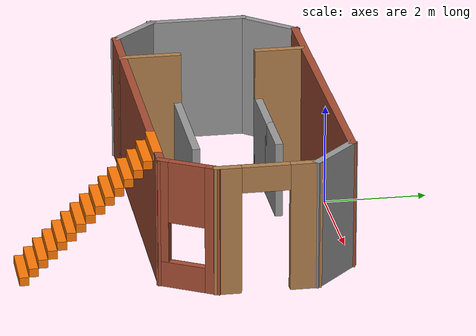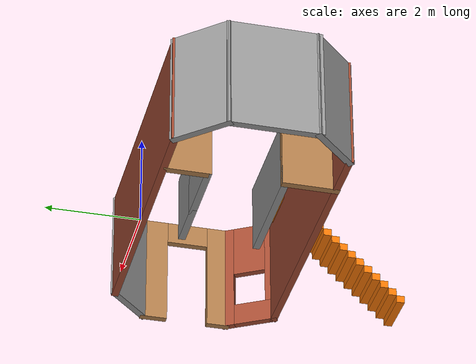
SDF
<?xml version='1.0'?>
<sdf version='1.6'>
  <model name='test_world'>
    <pose frame=''>-0.006075 -3.10197 0 0 -0 0</pose>
    <link name='Stairs_8'>
      <visual name='Stairs_8_Visual_0'>
        <pose frame=''>2.32607 -3.04903 0.083333 0 -0 -3.14159</pose>
        <geometry>
          <box>
            <size>1 0.178 0.166667</size>
          </box>
        </geometry>
        <material>
          <script>
            <uri>file://media/materials/scripts/gazebo.material</uri>
            <name>Gazebo/Grey</name>
          </script>
          <ambient>0.996078 0.47451 0.0196078 1</ambient>
        </material>
      </visual>
      <collision name='Stairs_8_Collision_0'>
        <geometry>
          <box>
            <size>1 0.178 0.166667</size>
          </box>
        </geometry>
        <pose frame=''>2.32607 -3.04903 0.083333 0 -0 -3.14159</pose>
      </collision>
      <visual name='Stairs_8_Visual_1'>
        <pose frame=''>2.32607 -2.87103 0.25 0 -0 -3.14159</pose>
        <geometry>
          <box>
            <size>1 0.178 0.166667</size>
          </box>
        </geometry>
        <material>
          <script>
            <uri>file://media/materials/scripts/gazebo.material</uri>
            <name>Gazebo/Grey</name>
          </script>
          <ambient>0.996078 0.47451 0.0196078 1</ambient>
        </material>
      </visual>
      <collision name='Stairs_8_Collision_1'>
        <geometry>
          <box>
            <size>1 0.178 0.166667</size>
          </box>
        </geometry>
        <pose frame=''>2.32607 -2.87103 0.25 0 -0 -3.14159</pose>
      </collision>
      <visual name='Stairs_8_Visual_2'>
        <pose frame=''>2.32607 -2.69303 0.416667 0 -0 -3.14159</pose>
        <geometry>
          <box>
            <size>1 0.178 0.166667</size>
          </box>
        </geometry>
        <material>
          <script>
            <uri>file://media/materials/scripts/gazebo.material</uri>
            <name>Gazebo/Grey</name>
          </script>
          <ambient>0.996078 0.47451 0.0196078 1</ambient>
        </material>
      </visual>
      <collision name='Stairs_8_Collision_2'>
        <geometry>
          <box>
            <size>1 0.178 0.166667</size>
          </box>
        </geometry>
        <pose frame=''>2.32607 -2.69303 0.416667 0 -0 -3.14159</pose>
      </collision>
      <visual name='Stairs_8_Visual_3'>
        <pose frame=''>2.32607 -2.51503 0.583333 0 -0 -3.14159</pose>
        <geometry>
          <box>
            <size>1 0.178 0.166667</size>
          </box>
        </geometry>
        <material>
          <script>
            <uri>file://media/materials/scripts/gazebo.material</uri>
            <name>Gazebo/Grey</name>
          </script>
          <ambient>0.996078 0.47451 0.0196078 1</ambient>
        </material>
      </visual>
      <collision name='Stairs_8_Collision_3'>
        <geometry>
          <box>
            <size>1 0.178 0.166667</size>
          </box>
        </geometry>
        <pose frame=''>2.32607 -2.51503 0.583333 0 -0 -3.14159</pose>
      </collision>
      <visual name='Stairs_8_Visual_4'>
        <pose frame=''>2.32607 -2.33703 0.75 0 -0 -3.14159</pose>
        <geometry>
          <box>
            <size>1 0.178 0.166667</size>
          </box>
        </geometry>
        <material>
          <script>
            <uri>file://media/materials/scripts/gazebo.material</uri>
            <name>Gazebo/Grey</name>
          </script>
          <ambient>0.996078 0.47451 0.0196078 1</ambient>
        </material>
      </visual>
      <collision name='Stairs_8_Collision_4'>
        <geometry>
          <box>
            <size>1 0.178 0.166667</size>
          </box>
        </geometry>
        <pose frame=''>2.32607 -2.33703 0.75 0 -0 -3.14159</pose>
      </collision>
      <visual name='Stairs_8_Visual_5'>
        <pose frame=''>2.32607 -2.15903 0.916667 0 -0 -3.14159</pose>
        <geometry>
          <box>
            <size>1 0.178 0.166667</size>
          </box>
        </geometry>
        <material>
          <script>
            <uri>file://media/materials/scripts/gazebo.material</uri>
            <name>Gazebo/Grey</name>
          </script>
          <ambient>0.996078 0.47451 0.0196078 1</ambient>
        </material>
      </visual>
      <collision name='Stairs_8_Collision_5'>
        <geometry>
          <box>
            <size>1 0.178 0.166667</size>
          </box>
        </geometry>
        <pose frame=''>2.32607 -2.15903 0.916667 0 -0 -3.14159</pose>
      </collision>
      <visual name='Stairs_8_Visual_6'>
        <pose frame=''>2.32607 -1.98103 1.08333 0 -0 -3.14159</pose>
        <geometry>
          <box>
            <size>1 0.178 0.166667</size>
          </box>
        </geometry>
        <material>
          <script>
            <uri>file://media/materials/scripts/gazebo.material</uri>
            <name>Gazebo/Grey</name>
          </script>
          <ambient>0.996078 0.47451 0.0196078 1</ambient>
        </material>
      </visual>
      <collision name='Stairs_8_Collision_6'>
        <geometry>
          <box>
            <size>1 0.178 0.166667</size>
          </box>
        </geometry>
        <pose frame=''>2.32607 -1.98103 1.08333 0 -0 -3.14159</pose>
      </collision>
      <visual name='Stairs_8_Visual_7'>
        <pose frame=''>2.32607 -1.80303 1.25 0 -0 -3.14159</pose>
        <geometry>
          <box>
            <size>1 0.178 0.166667</size>
          </box>
        </geometry>
        <material>
          <script>
            <uri>file://media/materials/scripts/gazebo.material</uri>
            <name>Gazebo/Grey</name>
          </script>
          <ambient>0.996078 0.47451 0.0196078 1</ambient>
        </material>
      </visual>
      <collision name='Stairs_8_Collision_7'>
        <geometry>
          <box>
            <size>1 0.178 0.166667</size>
          </box>
        </geometry>
        <pose frame=''>2.32607 -1.80303 1.25 0 -0 -3.14159</pose>
      </collision>
      <visual name='Stairs_8_Visual_8'>
        <pose frame=''>2.32607 -1.62503 1.41667 0 -0 -3.14159</pose>
        <geometry>
          <box>
            <size>1 0.178 0.166667</size>
          </box>
        </geometry>
        <material>
          <script>
            <uri>file://media/materials/scripts/gazebo.material</uri>
            <name>Gazebo/Grey</name>
          </script>
          <ambient>0.996078 0.47451 0.0196078 1</ambient>
        </material>
      </visual>
      <collision name='Stairs_8_Collision_8'>
        <geometry>
          <box>
            <size>1 0.178 0.166667</size>
          </box>
        </geometry>
        <pose frame=''>2.32607 -1.62503 1.41667 0 -0 -3.14159</pose>
      </collision>
      <visual name='Stairs_8_Visual_9'>
        <pose frame=''>2.32607 -1.44703 1.58333 0 -0 -3.14159</pose>
        <geometry>
          <box>
            <size>1 0.178 0.166667</size>
          </box>
        </geometry>
        <material>
          <script>
            <uri>file://media/materials/scripts/gazebo.material</uri>
            <name>Gazebo/Grey</name>
          </script>
          <ambient>0.996078 0.47451 0.0196078 1</ambient>
        </material>
      </visual>
      <collision name='Stairs_8_Collision_9'>
        <geometry>
          <box>
            <size>1 0.178 0.166667</size>
          </box>
        </geometry>
        <pose frame=''>2.32607 -1.44703 1.58333 0 -0 -3.14159</pose>
      </collision>
      <visual name='Stairs_8_Visual_10'>
        <pose frame=''>2.32607 -1.26903 1.75 0 -0 -3.14159</pose>
        <geometry>
          <box>
            <size>1 0.178 0.166667</size>
          </box>
        </geometry>
        <material>
          <script>
            <uri>file://media/materials/scripts/gazebo.material</uri>
            <name>Gazebo/Grey</name>
          </script>
          <ambient>0.996078 0.47451 0.0196078 1</ambient>
        </material>
      </visual>
      <collision name='Stairs_8_Collision_10'>
        <geometry>
          <box>
            <size>1 0.178 0.166667</size>
          </box>
        </geometry>
        <pose frame=''>2.32607 -1.26903 1.75 0 -0 -3.14159</pose>
      </collision>
      <visual name='Stairs_8_Visual_11'>
        <pose frame=''>2.32607 -1.09103 1.91667 0 -0 -3.14159</pose>
        <geometry>
          <box>
            <size>1 0.178 0.166667</size>
          </box>
        </geometry>
        <material>
          <script>
            <uri>file://media/materials/scripts/gazebo.material</uri>
            <name>Gazebo/Grey</name>
          </script>
          <ambient>0.996078 0.47451 0.0196078 1</ambient>
        </material>
      </visual>
      <collision name='Stairs_8_Collision_11'>
        <geometry>
          <box>
            <size>1 0.178 0.166667</size>
          </box>
        </geometry>
        <pose frame=''>2.32607 -1.09103 1.91667 0 -0 -3.14159</pose>
      </collision>
      <visual name='Stairs_8_Visual_12'>
        <pose frame=''>2.32607 -0.913033 2.08333 0 -0 -3.14159</pose>
        <geometry>
          <box>
            <size>1 0.178 0.166667</size>
          </box>
        </geometry>
        <material>
          <script>
            <uri>file://media/materials/scripts/gazebo.material</uri>
            <name>Gazebo/Grey</name>
          </script>
          <ambient>0.996078 0.47451 0.0196078 1</ambient>
        </material>
      </visual>
      <collision name='Stairs_8_Collision_12'>
        <geometry>
          <box>
            <size>1 0.178 0.166667</size>
          </box>
        </geometry>
        <pose frame=''>2.32607 -0.913033 2.08333 0 -0 -3.14159</pose>
      </collision>
      <visual name='Stairs_8_Visual_13'>
        <pose frame=''>2.32607 -0.735033 2.25 0 -0 -3.14159</pose>
        <geometry>
          <box>
            <size>1 0.178 0.166667</size>
          </box>
        </geometry>
        <material>
          <script>
            <uri>file://media/materials/scripts/gazebo.material</uri>
            <name>Gazebo/Grey</name>
          </script>
          <ambient>0.996078 0.47451 0.0196078 1</ambient>
        </material>
      </visual>
      <collision name='Stairs_8_Collision_13'>
        <geometry>
          <box>
            <size>1 0.178 0.166667</size>
          </box>
        </geometry>
        <pose frame=''>2.32607 -0.735033 2.25 0 -0 -3.14159</pose>
      </collision>
      <visual name='Stairs_8_Visual_14'>
        <pose frame=''>2.32607 -0.557033 2.41667 0 -0 -3.14159</pose>
        <geometry>
          <box>
            <size>1 0.178 0.166667</size>
          </box>
        </geometry>
        <material>
          <script>
            <uri>file://media/materials/scripts/gazebo.material</uri>
            <name>Gazebo/Grey</name>
          </script>
          <ambient>0.996078 0.47451 0.0196078 1</ambient>
        </material>
      </visual>
      <collision name='Stairs_8_Collision_14'>
        <geometry>
          <box>
            <size>1 0.178 0.166667</size>
          </box>
        </geometry>
        <pose frame=''>2.32607 -0.557033 2.41667 0 -0 -3.14159</pose>
      </collision>
    </link>
    <link name='Wall_0'>
      <collision name='Wall_0_Collision'>
        <geometry>
          <box>
            <size>6 0.15 2.5</size>
          </box>
        </geometry>
        <pose frame=''>0 0 1.25 0 -0 0</pose>
      </collision>
      <visual name='Wall_0_Visual'>
        <pose frame=''>0 0 1.25 0 -0 0</pose>
        <geometry>
          <box>
            <size>6 0.15 2.5</size>
          </box>
        </geometry>
        <material>
          <script>
            <uri>file://media/materials/scripts/gazebo.material</uri>
            <name>Gazebo/Bricks</name>
          </script>
          <ambient>1 1 1 1</ambient>
        </material>
      </visual>
      <pose frame=''>0.011075 3.03197 0 0 -0 0</pose>
    </link>
    <link name='Wall_1'>
      <collision name='Wall_1_Collision'>
        <geometry>
          <box>
            <size>1.25 0.15 2.5</size>
          </box>
        </geometry>
        <pose frame=''>0 0 1.25 0 -0 0</pose>
      </collision>
      <visual name='Wall_1_Visual'>
        <pose frame=''>0 0 1.25 0 -0 0</pose>
        <geometry>
          <box>
            <size>1.25 0.15 2.5</size>
          </box>
        </geometry>
        <material>
          <script>
            <uri>file://media/materials/scripts/gazebo.material</uri>
            <name>Gazebo/Grey</name>
          </script>
          <ambient>1 1 1 1</ambient>
        </material>
      </visual>
      <pose frame=''>3.32498 2.64306 0 0 0 -0.785398</pose>
    </link>
    <link name='Wall_10'>
      <collision name='Wall_10_Collision'>
        <geometry>
          <box>
            <size>1 0.15 2.5</size>
          </box>
        </geometry>
        <pose frame=''>0 0 1.25 0 -0 0</pose>
      </collision>
      <visual name='Wall_10_Visual'>
        <pose frame=''>0 0 1.25 0 -0 0</pose>
        <geometry>
          <box>
            <size>1 0.15 2.5</size>
          </box>
        </geometry>
        <material>
          <script>
            <uri>file://media/materials/scripts/gazebo.material</uri>
            <name>Gazebo/Wood</name>
          </script>
          <ambient>1 1 1 1</ambient>
        </material>
      </visual>
      <pose frame=''>-1.87393 2.53697 0 0 0 -1.5708</pose>
    </link>
    <link name='Wall_11'>
      <collision name='Wall_11_Collision'>
        <geometry>
          <box>
            <size>1.5 0.15 1.5</size>
          </box>
        </geometry>
        <pose frame=''>0 0 0.75 0 -0 0</pose>
      </collision>
      <visual name='Wall_11_Visual'>
        <pose frame=''>0 0 0.75 0 -0 0</pose>
        <geometry>
          <box>
            <size>1.5 0.15 1.5</size>
          </box>
        </geometry>
        <material>
          <script>
            <uri>file://media/materials/scripts/gazebo.material</uri>
            <name>Gazebo/Grey</name>
          </script>
          <ambient>1 1 1 1</ambient>
        </material>
      </visual>
      <pose frame=''>-1.19893 2.11197 0 0 -0 0</pose>
    </link>
    <link name='Wall_12'>
      <collision name='Wall_12_Collision'>
        <geometry>
          <box>
            <size>1.11021 0.15 1.5</size>
          </box>
        </geometry>
        <pose frame=''>0 0 0.75 0 -0 0</pose>
      </collision>
      <visual name='Wall_12_Visual'>
        <pose frame=''>0 0 0.75 0 -0 0</pose>
        <geometry>
          <box>
            <size>1.11021 0.15 1.5</size>
          </box>
        </geometry>
        <material>
          <script>
            <uri>file://media/materials/scripts/gazebo.material</uri>
            <name>Gazebo/Grey</name>
          </script>
          <ambient>1 1 1 1</ambient>
        </material>
      </visual>
      <pose frame=''>-0.043925 2.11197 0 0 -0 0</pose>
    </link>
    <link name='Wall_16'>
      <collision name='Wall_16_Collision'>
        <geometry>
          <box>
            <size>1.22 0.15 2.5</size>
          </box>
        </geometry>
        <pose frame=''>0 0 1.25 0 -0 0</pose>
      </collision>
      <visual name='Wall_16_Visual'>
        <pose frame=''>0 0 1.25 0 -0 0</pose>
        <geometry>
          <box>
            <size>1.22 0.15 2.5</size>
          </box>
        </geometry>
        <material>
          <script>
            <uri>file://media/materials/scripts/gazebo.material</uri>
            <name>Gazebo/Wood</name>
          </script>
          <ambient>1 1 1 1</ambient>
        </material>
      </visual>
      <pose frame=''>-1.92393 -0.023033 0 0 -0 1.5708</pose>
    </link>
    <link name='Wall_17'>
      <collision name='Wall_17_Collision'>
        <geometry>
          <box>
            <size>2.5 0.15 1.5</size>
          </box>
        </geometry>
        <pose frame=''>0 0 0.75 0 -0 0</pose>
      </collision>
      <visual name='Wall_17_Visual'>
        <pose frame=''>0 0 0.75 0 -0 0</pose>
        <geometry>
          <box>
            <size>2.5 0.15 1.5</size>
          </box>
        </geometry>
        <material>
          <script>
            <uri>file://media/materials/scripts/gazebo.material</uri>
            <name>Gazebo/Grey</name>
          </script>
          <ambient>1 1 1 1</ambient>
        </material>
      </visual>
      <pose frame=''>-0.748925 0.511967 0 0 -0 0</pose>
    </link>
    <link name='Wall_2'>
      <pose frame=''>3.71389 1.32915 0 0 0 -1.5708</pose>
      <visual name='Wall_2_Visual_0'>
        <pose frame=''>-0.706409 0 1.25 0 -0 0</pose>
        <geometry>
          <box>
            <size>0.587182 0.15 2.5</size>
          </box>
        </geometry>
        <material>
          <script>
            <uri>file://media/materials/scripts/gazebo.material</uri>
            <name>Gazebo/Wood</name>
          </script>
          <ambient>1 1 1 1</ambient>
        </material>
      </visual>
      <collision name='Wall_2_Collision_0'>
        <geometry>
          <box>
            <size>0.587182 0.15 2.5</size>
          </box>
        </geometry>
        <pose frame=''>-0.706409 0 1.25 0 -0 0</pose>
      </collision>
      <visual name='Wall_2_Visual_1'>
        <pose frame=''>0.743591 0 1.25 0 -0 0</pose>
        <geometry>
          <box>
            <size>0.512818 0.15 2.5</size>
          </box>
        </geometry>
        <material>
          <script>
            <uri>file://media/materials/scripts/gazebo.material</uri>
            <name>Gazebo/Wood</name>
          </script>
          <ambient>1 1 1 1</ambient>
        </material>
      </visual>
      <collision name='Wall_2_Collision_1'>
        <geometry>
          <box>
            <size>0.512818 0.15 2.5</size>
          </box>
        </geometry>
        <pose frame=''>0.743591 0 1.25 0 -0 0</pose>
      </collision>
      <visual name='Wall_2_Visual_2'>
        <pose frame=''>0.037182 0 2.25 0 -0 0</pose>
        <geometry>
          <box>
            <size>0.9 0.15 0.5</size>
          </box>
        </geometry>
        <material>
          <script>
            <uri>file://media/materials/scripts/gazebo.material</uri>
            <name>Gazebo/Wood</name>
          </script>
          <ambient>1 1 1 1</ambient>
        </material>
      </visual>
      <collision name='Wall_2_Collision_2'>
        <geometry>
          <box>
            <size>0.9 0.15 0.5</size>
          </box>
        </geometry>
        <pose frame=''>0.037182 0 2.25 0 -0 0</pose>
      </collision>
    </link>
    <link name='Wall_3'>
      <pose frame=''>3.43889 -0.072164 0 0 0 -2.0944</pose>
      <visual name='Wall_3_Visual_0'>
        <pose frame=''>-0.478788 0 1.25 0 -0 0</pose>
        <geometry>
          <box>
            <size>0.292424 0.15 2.5</size>
          </box>
        </geometry>
        <material>
          <script>
            <uri>file://media/materials/scripts/gazebo.material</uri>
            <name>Gazebo/Bricks</name>
          </script>
          <ambient>0.996078 0.47451 0.0196078 1</ambient>
        </material>
      </visual>
      <collision name='Wall_3_Collision_0'>
        <geometry>
          <box>
            <size>0.292424 0.15 2.5</size>
          </box>
        </geometry>
        <pose frame=''>-0.478788 0 1.25 0 -0 0</pose>
      </collision>
      <visual name='Wall_3_Visual_1'>
        <pose frame=''>0.146212 0 0.25 0 -0 0</pose>
        <geometry>
          <box>
            <size>0.957576 0.15 0.5</size>
          </box>
        </geometry>
        <material>
          <script>
            <uri>file://media/materials/scripts/gazebo.material</uri>
            <name>Gazebo/Bricks</name>
          </script>
          <ambient>0.996078 0.47451 0.0196078 1</ambient>
        </material>
      </visual>
      <collision name='Wall_3_Collision_1'>
        <geometry>
          <box>
            <size>0.957576 0.15 0.5</size>
          </box>
        </geometry>
        <pose frame=''>0.146212 0 0.25 0 -0 0</pose>
      </collision>
      <visual name='Wall_3_Visual_2'>
        <pose frame=''>0.502241 0 1.5 0 -0 0</pose>
        <geometry>
          <box>
            <size>0.245518 0.15 2</size>
          </box>
        </geometry>
        <material>
          <script>
            <uri>file://media/materials/scripts/gazebo.material</uri>
            <name>Gazebo/Bricks</name>
          </script>
          <ambient>0.996078 0.47451 0.0196078 1</ambient>
        </material>
      </visual>
      <collision name='Wall_3_Collision_2'>
        <geometry>
          <box>
            <size>0.245518 0.15 2</size>
          </box>
        </geometry>
        <pose frame=''>0.502241 0 1.5 0 -0 0</pose>
      </collision>
      <visual name='Wall_3_Visual_3'>
        <pose frame=''>0.023453 0 1.9 0 -0 0</pose>
        <geometry>
          <box>
            <size>0.712058 0.15 1.2</size>
          </box>
        </geometry>
        <material>
          <script>
            <uri>file://media/materials/scripts/gazebo.material</uri>
            <name>Gazebo/Bricks</name>
          </script>
          <ambient>0.996078 0.47451 0.0196078 1</ambient>
        </material>
      </visual>
      <collision name='Wall_3_Collision_3'>
        <geometry>
          <box>
            <size>0.712058 0.15 1.2</size>
          </box>
        </geometry>
        <pose frame=''>0.023453 0 1.9 0 -0 0</pose>
      </collision>
    </link>
    <link name='Wall_4'>
      <collision name='Wall_4_Collision'>
        <geometry>
          <box>
            <size>6.25 0.15 2.5</size>
          </box>
        </geometry>
        <pose frame=''>0 0 1.25 0 -0 0</pose>
      </collision>
      <visual name='Wall_4_Visual'>
        <pose frame=''>0 0 1.25 0 -0 0</pose>
        <geometry>
          <box>
            <size>6.25 0.15 2.5</size>
          </box>
        </geometry>
        <material>
          <script>
            <uri>file://media/materials/scripts/gazebo.material</uri>
            <name>Gazebo/Bricks</name>
          </script>
          <ambient>1 1 1 1</ambient>
        </material>
      </visual>
      <pose frame=''>0.113892 -0.548478 0 0 -0 3.14159</pose>
    </link>
    <link name='Wall_5'>
      <collision name='Wall_5_Collision'>
        <geometry>
          <box>
            <size>1.27864 0.15 2.5</size>
          </box>
        </geometry>
        <pose frame=''>0 0 1.25 0 -0 0</pose>
      </collision>
      <visual name='Wall_5_Visual'>
        <pose frame=''>0 0 1.25 0 -0 0</pose>
        <geometry>
          <box>
            <size>1.27864 0.15 2.5</size>
          </box>
        </geometry>
        <material>
          <script>
            <uri>file://media/materials/scripts/gazebo.material</uri>
            <name>Gazebo/Grey</name>
          </script>
          <ambient>1 1 1 1</ambient>
        </material>
      </visual>
      <pose frame=''>-3.32502 -0.13957 0 0 -0 2.33113</pose>
    </link>
    <link name='Wall_6'>
      <collision name='Wall_6_Collision'>
        <geometry>
          <box>
            <size>2 0.15 2.5</size>
          </box>
        </geometry>
        <pose frame=''>0 0 1.25 0 -0 0</pose>
      </collision>
      <visual name='Wall_6_Visual'>
        <pose frame=''>0 0 1.25 0 -0 0</pose>
        <geometry>
          <box>
            <size>2 0.15 2.5</size>
          </box>
        </geometry>
        <material>
          <script>
            <uri>file://media/materials/scripts/gazebo.material</uri>
            <name>Gazebo/Grey</name>
          </script>
          <ambient>1 1 1 1</ambient>
        </material>
      </visual>
      <pose frame=''>-3.71393 1.17434 0 0 -0 1.5708</pose>
    </link>
    <link name='Wall_7'>
      <collision name='Wall_7_Collision'>
        <geometry>
          <box>
            <size>1.36363 0.15 2.5</size>
          </box>
        </geometry>
        <pose frame=''>0 0 1.25 0 -0 0</pose>
      </collision>
      <visual name='Wall_7_Visual'>
        <pose frame=''>0 0 1.25 0 -0 0</pose>
        <geometry>
          <box>
            <size>1.36363 0.15 2.5</size>
          </box>
        </geometry>
        <material>
          <script>
            <uri>file://media/materials/scripts/gazebo.material</uri>
            <name>Gazebo/Grey</name>
          </script>
          <ambient>1 1 1 1</ambient>
        </material>
      </visual>
      <pose frame=''>-3.31392 2.57565 0 0 -0 0.851067</pose>
    </link>
    <static>1</static>
  </model>
</sdf>
